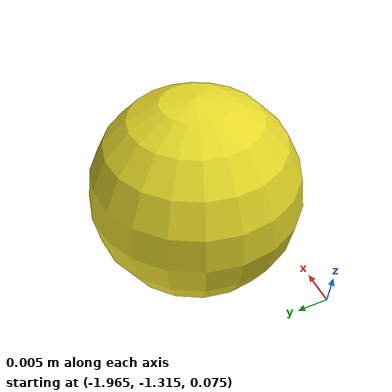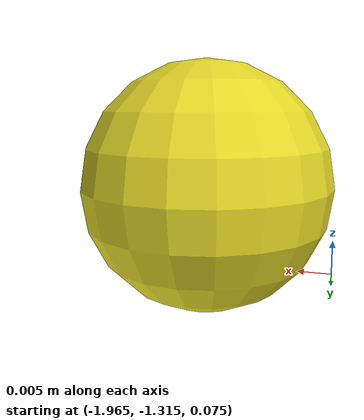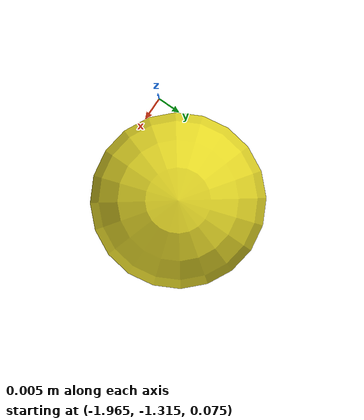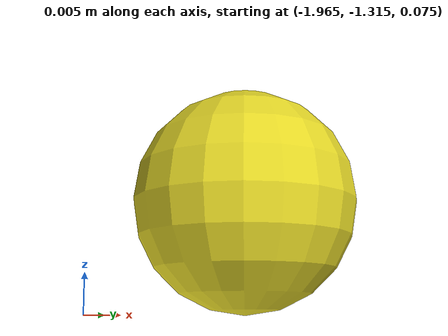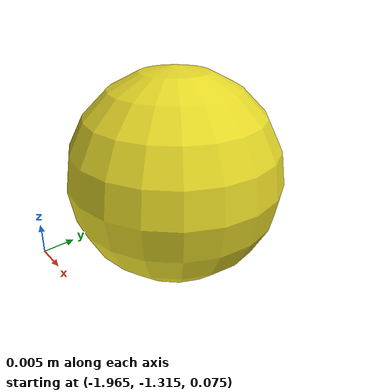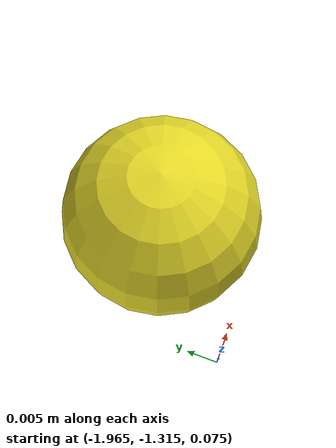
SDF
<?xml version='1.0'?>
<sdf version='1.6'>
  <model name='traffic_light_yellow'>
    <pose frame=''>0 0 0 0 -0 -1.5708</pose>
    <link name='traffic_light_yellow'>
       <collision name='collision'>
          <pose frame=''>1.3 -1.95 0.09 0 0 0</pose>
          <geometry>
            <sphere>
              <radius>0.015</radius>
            </sphere>
          </geometry>
        </collision>
        <visual name='visual'>
          <pose frame=''>1.3 -1.95 0.09 0 0 0</pose>
          <geometry>
            <sphere>
              <radius>0.015</radius>
            </sphere>
          </geometry>
          <material>
            <script>
              <name>Gazebo/Yellow</name>
              <uri>file:///home/david/my_ros2_ws/src/turtlebot3_autobot/map/material/gazebo.material</uri>
            </script>
          </material>
        </visual>
        <self_collide>0</self_collide>
        <kinematic>0</kinematic>
      </link>
      <static>1</static>
    </model>
</sdf>
